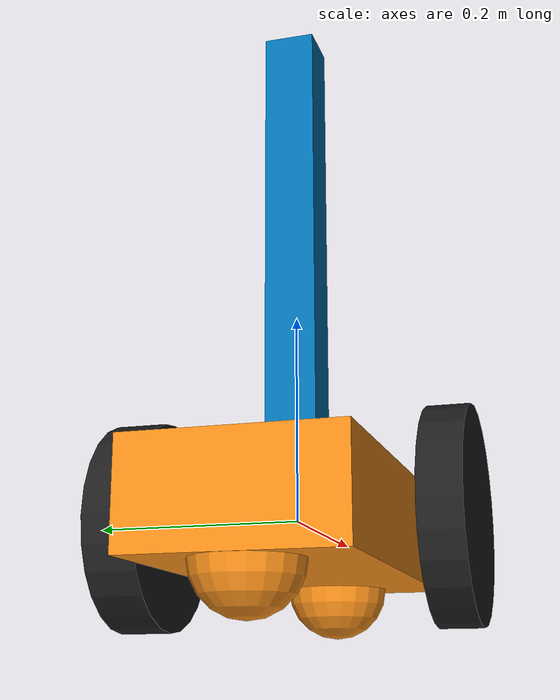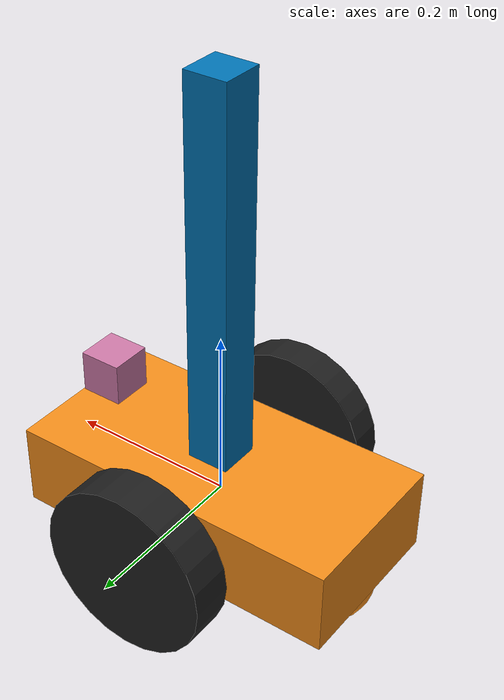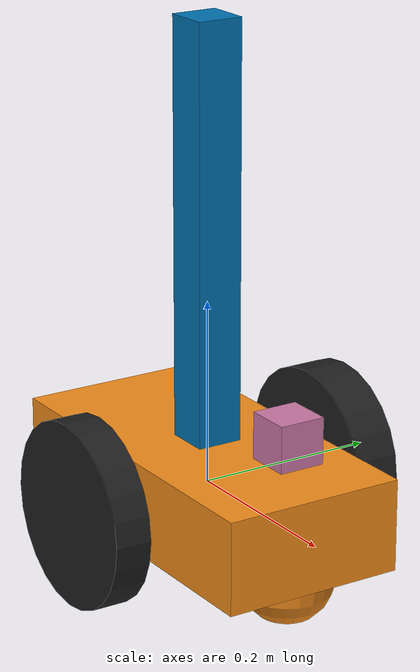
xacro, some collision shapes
<?xml version='1.0'?>

<robot name="baymax" xmlns:xacro="http://www.ros.org/wiki/xacro">

<!-- include plugins and renders -->
  <xacro:include filename="$(find baymax)/urdf/baymax.gazebo" />

<!-- chassis -->
  <link name="robot_footprint"></link>
  <joint name="robot_footprint_joint" type="fixed">
    <origin xyz="0 0 0" rpy="0 0 0" />
    <parent link="robot_footprint"/>
    <child link="chassis" />
  </joint>

  <link name='chassis'>
    <pose>0 0 0.1 0 0 0</pose>

    <inertial>
      <mass value="15.0"/>
      <origin xyz="0.0 0 0" rpy=" 0 0 0"/>
      <inertia
          ixx="0.1" ixy="0" ixz="0"
          iyy="0.1" iyz="0"
          izz="0.1"
      />
    </inertial>

    <collision name='collision'>
      <origin xyz="0 0 0" rpy=" 0 0 0"/>
      <geometry>
        <box size=".4 .2 .1"/>
      </geometry>
    </collision>

    <visual name='chassis_visual'>
      <origin xyz="0 0 0" rpy=" 0 0 0"/>
      <geometry>
        <box size=".4 .2 .1"/>
      </geometry>
    </visual>

    <!-- back caster -->
    <collision name='back_caster_collision'>
      <origin xyz="-0.15 0 -0.05" rpy=" 0 0 0"/>
      <geometry>
        <sphere radius="0.0499"/>
      </geometry>
    </collision>

    <visual name='back_caster_visual'>
      <origin xyz="-0.15 0 -0.05" rpy=" 0 0 0"/>
      <geometry>
        <sphere radius="0.05"/>
      </geometry>
    </visual>

    <!-- front caster -->
    <collision name='front_caster_collision'>
      <origin xyz="0.15 0 -0.05" rpy=" 0 0 0"/>
      <geometry>
        <sphere radius="0.0499"/>
      </geometry>
    </collision>

    <visual name='front_caster_visual'>
      <origin xyz="0.15 0 -0.05" rpy=" 0 0 0"/>
      <geometry>
        <sphere radius="0.05"/>
      </geometry>
    </visual>
  </link>
<!-- /chassis -->

<!-- left wheel link -->
  <link name="left_wheel">
  	<inertial>
  		<mass value="5"/>
  		<origin xyz="0 0 0" rpy="0 1.5707 1.5707"/>
  		<inertia
  			ixx="0.1" ixy="0" ixz="0"
  			iyy="0.1" iyz="0"
  			izz="0.1"
  		/>
  	</inertial>

  	<collision name="left_wheel_collision">
  		<origin xyz="0 0 0" rpy="0 1.5707 1.5707"/>
  		<geometry>
  			<cylinder length="0.05" radius="0.1" />
  		</geometry>
  	</collision>

  	<visual name="left_wheel_visual">
  		<origin xyz="0 0 0" rpy="0 1.5707 1.5707"/>
  		<geometry>
  			<cylinder length="0.05" radius="0.1"/>
  		</geometry>
  	</visual>
  </link>

<!-- /left wheel -->

<!-- right wheel -->
  <link name="right_wheel">
  	<inertial>
  		<mass value="5"/>
  		<origin xyz="0 0 0" rpy="0 1.5707 1.5707"/>
  		<inertia
  			ixx="0.1" ixy="0" ixz="0"
  			iyy="0.1" iyz="0"
  			izz="0.1"
  		/>
  	</inertial>

  	<collision name="right_wheel_collision">
  		<origin xyz="0 0 0" rpy="0 1.5707 1.5707"/>
  		<geometry>
  			<cylinder length="0.05" radius="0.1" />
  		</geometry>
  	</collision>

  	<visual name="right_wheel_visual">
  		<origin xyz="0 0 0" rpy="0 1.5707 1.5707"/>
  		<geometry>
  			<cylinder length="0.04" radius="0.1"/>
  		</geometry>
  	</visual>
  </link>

<!-- /right wheel -->

<!-- wheel joints -->
  <joint type="continuous" name="left_wheel_hinge">
    <origin xyz="0 0.15 0" rpy="0 0 0"/>
    <child link="left_wheel"/>
    <parent link="chassis"/>
    <axis xyz="0 1 0" rpy="0 0 0"/>
    <limit effort="10000" velocity="1000"/>
    <dynamics damping="1.0" friction="1.0"/>
  </joint>

  <joint type="continuous" name="right_wheel_hinge">
    <origin xyz="0 -0.15 0" rpy="0 0 0"/>
    <child link="right_wheel"/>
    <parent link="chassis"/>
    <axis xyz="0 1 0" rpy="0 0 0"/>
    <limit effort="10000" velocity="1000"/>
    <dynamics damping="1.0" friction="1.0"/>
  </joint>
<!-- joints end here  -->

<!-- camera -->
  <link name="camera">
  	<inertia>
  		<mass value="0.1"/>
  		<origin xyz="0 0 0" rpy="0 0 0"/>
  		<inertia
  			ixx="1e-6" ixy="0" ixz="0"
  			iyy="1e-6" iyz="0"
  			izz="1e-6"
  		/>
  	</inertia>

  	<collision>
  		<origin xyz="0 0 -0.25" rpy="0 0 0"/>
  		<geometry>
  			<box size="0.05 0.05 0.5"/>
  		</geometry>
  	</collision>

  	<visual>
  		<origin xyz="0 0 -0.25" rpy="0 0 0"/>
  		<geometry>
  			<box size="0.05 0.05 0.5"/>
  		</geometry>
  	</visual>
  </link>

  <joint type="fixed" name="camera_joint">
  	<origin xyz="0.0 0 0.5" rpy="0 0 ${pi/2}"/>
  	<child link="camera" />
  	<parent link="chassis"/>
  </joint>
<!-- /camera -->

 <!-- /tf requirement for point cloud -->
 <!-- rgbd camera frame -->

  <link name="camera_rgbd_frame"></link>

  <joint name="camera_rgbd_joint" type="fixed">
    <origin xyz="0 0 0" rpy="-${pi/2} 0 -${pi/2}"/>
    <parent link="camera"/>
    <child link="camera_rgbd_frame"/>
  </joint>

<!-- hokuyo laser scanner -->
  <link name="hokuyo">
  	<inertia>
  		<mass value="0.1"/>
  		<origin xyz="0 0 0" rpy="0 0 0"/>
  		<inertia
  			ixx="1e-6" ixy="0" ixz="0"
  			iyy="1e-6" iyz="0"
  			izz="1e-6"
  		/>
  	</inertia>

  	<collision>
  		<origin xyz="0.0 0 0" rpy="0 0 0"/>
  		<geometry>
  			<box size="0.05 0.05 0.05"/>
  		</geometry>
  	</collision>

  	<visual>
  		<origin xyz="0 0 0" rpy="0 0 0"/>
  		<geometry>
  			<mesh filename="package://baymax/meshes/hokuyo.dae"/>
  		</geometry>
  	</visual>
  </link>

  <joint type="fixed" name="hokuyo_joint">
  	<origin xyz="0.15 0 0.1" rpy="0 0 0"/>
  	<child link="hokuyo" />
  	<parent link="chassis"/>
  </joint>
<!-- /hokuyo -->

</robot>
